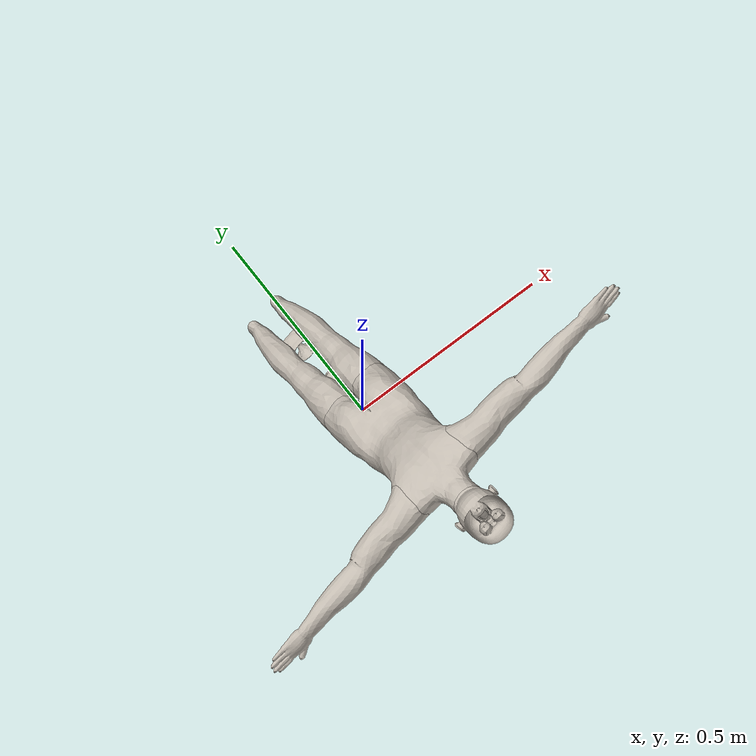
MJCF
<mujoco model="baby_crawl_frame0_static">
  <asset>
  <texture file="visual/ceramic.png" name="tex-baby_crawl_frame0_static" type="2d" />
  <material name="baby_crawl_frame0_static" reflectance="0.5" texrepeat="1 1" texture="tex-baby_crawl_frame0_static" texuniform="false" />
  <mesh file="visual/model_normalized_0.obj" name="model_normalized_0_vis" scale="1.0 1.0 1.0" /><mesh file="visual/model_normalized_1.obj" name="model_normalized_1_vis" scale="1.0 1.0 1.0" /><mesh file="visual/model_normalized_2.obj" name="model_normalized_2_vis" scale="1.0 1.0 1.0" /><mesh file="visual/model_normalized_3.obj" name="model_normalized_3_vis" scale="1.0 1.0 1.0" /><mesh file="visual/model_normalized_4.obj" name="model_normalized_4_vis" scale="1.0 1.0 1.0" /><mesh file="visual/model_normalized_5.obj" name="model_normalized_5_vis" scale="1.0 1.0 1.0" /><mesh file="visual/model_normalized_6.obj" name="model_normalized_6_vis" scale="1.0 1.0 1.0" /><mesh file="visual/model_normalized_7.obj" name="model_normalized_7_vis" scale="1.0 1.0 1.0" /><mesh file="visual/model_normalized_8.obj" name="model_normalized_8_vis" scale="1.0 1.0 1.0" /><mesh file="visual/model_normalized_9.obj" name="model_normalized_9_vis" scale="1.0 1.0 1.0" /><mesh file="visual/model_normalized_10.obj" name="model_normalized_10_vis" scale="1.0 1.0 1.0" /><mesh file="visual/model_normalized_11.obj" name="model_normalized_11_vis" scale="1.0 1.0 1.0" /><mesh file="visual/model_normalized_12.obj" name="model_normalized_12_vis" scale="1.0 1.0 1.0" /><mesh file="visual/model_normalized_13.obj" name="model_normalized_13_vis" scale="1.0 1.0 1.0" /><mesh file="collision/model_normalized_collision_22.obj" name="model_normalized_collision_22._coll" scale="1.0 1.0 1.0" /><mesh file="collision/model_normalized_collision_4.obj" name="model_normalized_collision_4._coll" scale="1.0 1.0 1.0" /><mesh file="collision/model_normalized_collision_27.obj" name="model_normalized_collision_27._coll" scale="1.0 1.0 1.0" /><mesh file="collision/model_normalized_collision_6.obj" name="model_normalized_collision_6._coll" scale="1.0 1.0 1.0" /><mesh file="collision/model_normalized_collision_25.obj" name="model_normalized_collision_25._coll" scale="1.0 1.0 1.0" /><mesh file="collision/model_normalized_collision_26.obj" name="model_normalized_collision_26._coll" scale="1.0 1.0 1.0" /><mesh file="collision/model_normalized_collision_29.obj" name="model_normalized_collision_29._coll" scale="1.0 1.0 1.0" /><mesh file="collision/model_normalized_collision_19.obj" name="model_normalized_collision_19._coll" scale="1.0 1.0 1.0" /><mesh file="collision/model_normalized_collision_12.obj" name="model_normalized_collision_12._coll" scale="1.0 1.0 1.0" /><mesh file="collision/model_normalized_collision_17.obj" name="model_normalized_collision_17._coll" scale="1.0 1.0 1.0" /><mesh file="collision/model_normalized_collision_20.obj" name="model_normalized_collision_20._coll" scale="1.0 1.0 1.0" /><mesh file="collision/model_normalized_collision_14.obj" name="model_normalized_collision_14._coll" scale="1.0 1.0 1.0" /><mesh file="collision/model_normalized_collision_18.obj" name="model_normalized_collision_18._coll" scale="1.0 1.0 1.0" /><mesh file="collision/model_normalized_collision_15.obj" name="model_normalized_collision_15._coll" scale="1.0 1.0 1.0" /><mesh file="collision/model_normalized_collision_30.obj" name="model_normalized_collision_30._coll" scale="1.0 1.0 1.0" /><mesh file="collision/model_normalized_collision_31.obj" name="model_normalized_collision_31._coll" scale="1.0 1.0 1.0" /><mesh file="collision/model_normalized_collision_23.obj" name="model_normalized_collision_23._coll" scale="1.0 1.0 1.0" /><mesh file="collision/model_normalized_collision_28.obj" name="model_normalized_collision_28._coll" scale="1.0 1.0 1.0" /><mesh file="collision/model_normalized_collision_13.obj" name="model_normalized_collision_13._coll" scale="1.0 1.0 1.0" /><mesh file="collision/model_normalized_collision_5.obj" name="model_normalized_collision_5._coll" scale="1.0 1.0 1.0" /><mesh file="collision/model_normalized_collision_24.obj" name="model_normalized_collision_24._coll" scale="1.0 1.0 1.0" /><mesh file="collision/model_normalized_collision_16.obj" name="model_normalized_collision_16._coll" scale="1.0 1.0 1.0" /><mesh file="collision/model_normalized_collision_11.obj" name="model_normalized_collision_11._coll" scale="1.0 1.0 1.0" /><mesh file="collision/model_normalized_collision_1.obj" name="model_normalized_collision_1._coll" scale="1.0 1.0 1.0" /><mesh file="collision/model_normalized_collision_10.obj" name="model_normalized_collision_10._coll" scale="1.0 1.0 1.0" /><mesh file="collision/model_normalized_collision_21.obj" name="model_normalized_collision_21._coll" scale="1.0 1.0 1.0" /><mesh file="collision/model_normalized_collision_8.obj" name="model_normalized_collision_8._coll" scale="1.0 1.0 1.0" /><mesh file="collision/model_normalized_collision_7.obj" name="model_normalized_collision_7._coll" scale="1.0 1.0 1.0" /><mesh file="collision/model_normalized_collision_3.obj" name="model_normalized_collision_3._coll" scale="1.0 1.0 1.0" /><mesh file="collision/model_normalized_collision_2.obj" name="model_normalized_collision_2._coll" scale="1.0 1.0 1.0" /><mesh file="collision/model_normalized_collision_9.obj" name="model_normalized_collision_9._coll" scale="1.0 1.0 1.0" /><mesh file="collision/model_normalized_collision_0.obj" name="model_normalized_collision_0._coll" scale="1.0 1.0 1.0" /><texture type="2d" name="Std_Tongue" file="visual/Std_Tongue.png" /><texture type="2d" name="Std_Eyelash" file="visual/Std_Eyelash.png" /><texture type="2d" name="Std_Nails" file="visual/Std_Nails.png" /><texture type="2d" name="Std_Skin_Leg" file="visual/Std_Skin_Leg.png" /><texture type="2d" name="Std_Skin_Arm" file="visual/Std_Skin_Arm.png" /><texture type="2d" name="Std_Skin_Body" file="visual/Std_Skin_Body.png" /><texture type="2d" name="Std_Skin_Head" file="visual/Std_Skin_Head.png" /><texture type="2d" name="1_Pupil" file="visual/1_Pupil.png" /><texture type="2d" name="1_Cornea" file="visual/1_Cornea.png" /><texture type="2d" name="MetalPins" file="visual/MetalPins.png" /><texture type="2d" name="Diaper" file="visual/Diaper.png" /><texture type="2d" name="PinCaps" file="visual/PinCaps.png" /><texture type="2d" name="2_Teeth" file="visual/2_Teeth.png" /><texture type="2d" name="Beanie" file="visual/Beanie.png" /><material name="Std_Tongue" texture="Std_Tongue" specular="0.4000000000000001" shininess="0.001" /><material name="Std_Eyelash" texture="Std_Eyelash" specular="0.4000000000000001" shininess="0.001" /><material name="Std_Nails" texture="Std_Nails" specular="0.4000000000000001" shininess="0.001" /><material name="Std_Skin_Leg" texture="Std_Skin_Leg" specular="0.4000000000000001" shininess="0.001" /><material name="Std_Skin_Arm" texture="Std_Skin_Arm" specular="0.4000000000000001" shininess="0.001" /><material name="Std_Skin_Body" texture="Std_Skin_Body" specular="0.4000000000000001" shininess="0.001" /><material name="Std_Skin_Head" texture="Std_Skin_Head" specular="0.4000000000000001" shininess="0.001" /><material name="1_Pupil" texture="1_Pupil" specular="0.4000000000000001" shininess="0.001" /><material name="1_Cornea" texture="1_Cornea" specular="0.4000000000000001" shininess="0.001" /><material name="MetalPins" texture="MetalPins" specular="0.4000000000000001" shininess="0.001" /><material name="Diaper" texture="Diaper" specular="0.4000000000000001" shininess="0.001" /><material name="PinCaps" texture="PinCaps" specular="0.4000000000000001" shininess="0.001" /><material name="2_Teeth" texture="2_Teeth" specular="0.4000000000000001" shininess="0.001" /><material name="Beanie" texture="Beanie" specular="0.4000000000000001" shininess="0.001" /></asset>
  <worldbody>
    <body>
      <body name="object">
      <geom solimp="0.998 0.998 0.001" solref="0.001 1" density="100" friction="0.95 0.3 0.1" type="mesh" mesh="model_normalized_0_vis" conaffinity="0" contype="0" group="1" material="Beanie" /><geom solimp="0.998 0.998 0.001" solref="0.001 1" density="100" friction="0.95 0.3 0.1" type="mesh" mesh="model_normalized_1_vis" conaffinity="0" contype="0" group="1" material="2_Teeth" /><geom solimp="0.998 0.998 0.001" solref="0.001 1" density="100" friction="0.95 0.3 0.1" type="mesh" mesh="model_normalized_2_vis" conaffinity="0" contype="0" group="1" material="PinCaps" /><geom solimp="0.998 0.998 0.001" solref="0.001 1" density="100" friction="0.95 0.3 0.1" type="mesh" mesh="model_normalized_3_vis" conaffinity="0" contype="0" group="1" material="Diaper" /><geom solimp="0.998 0.998 0.001" solref="0.001 1" density="100" friction="0.95 0.3 0.1" type="mesh" mesh="model_normalized_4_vis" conaffinity="0" contype="0" group="1" material="MetalPins" /><geom solimp="0.998 0.998 0.001" solref="0.001 1" density="100" friction="0.95 0.3 0.1" type="mesh" mesh="model_normalized_5_vis" conaffinity="0" contype="0" group="1" material="1_Cornea" /><geom solimp="0.998 0.998 0.001" solref="0.001 1" density="100" friction="0.95 0.3 0.1" type="mesh" mesh="model_normalized_6_vis" conaffinity="0" contype="0" group="1" material="1_Pupil" /><geom solimp="0.998 0.998 0.001" solref="0.001 1" density="100" friction="0.95 0.3 0.1" type="mesh" mesh="model_normalized_7_vis" conaffinity="0" contype="0" group="1" material="Std_Skin_Head" /><geom solimp="0.998 0.998 0.001" solref="0.001 1" density="100" friction="0.95 0.3 0.1" type="mesh" mesh="model_normalized_8_vis" conaffinity="0" contype="0" group="1" material="Std_Skin_Body" /><geom solimp="0.998 0.998 0.001" solref="0.001 1" density="100" friction="0.95 0.3 0.1" type="mesh" mesh="model_normalized_9_vis" conaffinity="0" contype="0" group="1" material="Std_Skin_Arm" /><geom solimp="0.998 0.998 0.001" solref="0.001 1" density="100" friction="0.95 0.3 0.1" type="mesh" mesh="model_normalized_10_vis" conaffinity="0" contype="0" group="1" material="Std_Skin_Leg" /><geom solimp="0.998 0.998 0.001" solref="0.001 1" density="100" friction="0.95 0.3 0.1" type="mesh" mesh="model_normalized_11_vis" conaffinity="0" contype="0" group="1" material="Std_Nails" /><geom solimp="0.998 0.998 0.001" solref="0.001 1" density="100" friction="0.95 0.3 0.1" type="mesh" mesh="model_normalized_12_vis" conaffinity="0" contype="0" group="1" material="Std_Eyelash" /><geom solimp="0.998 0.998 0.001" solref="0.001 1" density="100" friction="0.95 0.3 0.1" type="mesh" mesh="model_normalized_13_vis" conaffinity="0" contype="0" group="1" material="Std_Tongue" /><geom solimp="0.998 0.998 0.001" solref="0.001 1" density="100" friction="0.95 0.3 0.1" type="mesh" mesh="model_normalized_collision_22._coll" group="0" rgba="0.8 0.8 0.8 0.0" /><geom solimp="0.998 0.998 0.001" solref="0.001 1" density="100" friction="0.95 0.3 0.1" type="mesh" mesh="model_normalized_collision_4._coll" group="0" rgba="0.8 0.8 0.8 0.0" /><geom solimp="0.998 0.998 0.001" solref="0.001 1" density="100" friction="0.95 0.3 0.1" type="mesh" mesh="model_normalized_collision_27._coll" group="0" rgba="0.8 0.8 0.8 0.0" /><geom solimp="0.998 0.998 0.001" solref="0.001 1" density="100" friction="0.95 0.3 0.1" type="mesh" mesh="model_normalized_collision_6._coll" group="0" rgba="0.8 0.8 0.8 0.0" /><geom solimp="0.998 0.998 0.001" solref="0.001 1" density="100" friction="0.95 0.3 0.1" type="mesh" mesh="model_normalized_collision_25._coll" group="0" rgba="0.8 0.8 0.8 0.0" /><geom solimp="0.998 0.998 0.001" solref="0.001 1" density="100" friction="0.95 0.3 0.1" type="mesh" mesh="model_normalized_collision_26._coll" group="0" rgba="0.8 0.8 0.8 0.0" /><geom solimp="0.998 0.998 0.001" solref="0.001 1" density="100" friction="0.95 0.3 0.1" type="mesh" mesh="model_normalized_collision_29._coll" group="0" rgba="0.8 0.8 0.8 0.0" /><geom solimp="0.998 0.998 0.001" solref="0.001 1" density="100" friction="0.95 0.3 0.1" type="mesh" mesh="model_normalized_collision_19._coll" group="0" rgba="0.8 0.8 0.8 0.0" /><geom solimp="0.998 0.998 0.001" solref="0.001 1" density="100" friction="0.95 0.3 0.1" type="mesh" mesh="model_normalized_collision_12._coll" group="0" rgba="0.8 0.8 0.8 0.0" /><geom solimp="0.998 0.998 0.001" solref="0.001 1" density="100" friction="0.95 0.3 0.1" type="mesh" mesh="model_normalized_collision_17._coll" group="0" rgba="0.8 0.8 0.8 0.0" /><geom solimp="0.998 0.998 0.001" solref="0.001 1" density="100" friction="0.95 0.3 0.1" type="mesh" mesh="model_normalized_collision_20._coll" group="0" rgba="0.8 0.8 0.8 0.0" /><geom solimp="0.998 0.998 0.001" solref="0.001 1" density="100" friction="0.95 0.3 0.1" type="mesh" mesh="model_normalized_collision_14._coll" group="0" rgba="0.8 0.8 0.8 0.0" /><geom solimp="0.998 0.998 0.001" solref="0.001 1" density="100" friction="0.95 0.3 0.1" type="mesh" mesh="model_normalized_collision_18._coll" group="0" rgba="0.8 0.8 0.8 0.0" /><geom solimp="0.998 0.998 0.001" solref="0.001 1" density="100" friction="0.95 0.3 0.1" type="mesh" mesh="model_normalized_collision_15._coll" group="0" rgba="0.8 0.8 0.8 0.0" /><geom solimp="0.998 0.998 0.001" solref="0.001 1" density="100" friction="0.95 0.3 0.1" type="mesh" mesh="model_normalized_collision_30._coll" group="0" rgba="0.8 0.8 0.8 0.0" /><geom solimp="0.998 0.998 0.001" solref="0.001 1" density="100" friction="0.95 0.3 0.1" type="mesh" mesh="model_normalized_collision_31._coll" group="0" rgba="0.8 0.8 0.8 0.0" /><geom solimp="0.998 0.998 0.001" solref="0.001 1" density="100" friction="0.95 0.3 0.1" type="mesh" mesh="model_normalized_collision_23._coll" group="0" rgba="0.8 0.8 0.8 0.0" /><geom solimp="0.998 0.998 0.001" solref="0.001 1" density="100" friction="0.95 0.3 0.1" type="mesh" mesh="model_normalized_collision_28._coll" group="0" rgba="0.8 0.8 0.8 0.0" /><geom solimp="0.998 0.998 0.001" solref="0.001 1" density="100" friction="0.95 0.3 0.1" type="mesh" mesh="model_normalized_collision_13._coll" group="0" rgba="0.8 0.8 0.8 0.0" /><geom solimp="0.998 0.998 0.001" solref="0.001 1" density="100" friction="0.95 0.3 0.1" type="mesh" mesh="model_normalized_collision_5._coll" group="0" rgba="0.8 0.8 0.8 0.0" /><geom solimp="0.998 0.998 0.001" solref="0.001 1" density="100" friction="0.95 0.3 0.1" type="mesh" mesh="model_normalized_collision_24._coll" group="0" rgba="0.8 0.8 0.8 0.0" /><geom solimp="0.998 0.998 0.001" solref="0.001 1" density="100" friction="0.95 0.3 0.1" type="mesh" mesh="model_normalized_collision_16._coll" group="0" rgba="0.8 0.8 0.8 0.0" /><geom solimp="0.998 0.998 0.001" solref="0.001 1" density="100" friction="0.95 0.3 0.1" type="mesh" mesh="model_normalized_collision_11._coll" group="0" rgba="0.8 0.8 0.8 0.0" /><geom solimp="0.998 0.998 0.001" solref="0.001 1" density="100" friction="0.95 0.3 0.1" type="mesh" mesh="model_normalized_collision_1._coll" group="0" rgba="0.8 0.8 0.8 0.0" /><geom solimp="0.998 0.998 0.001" solref="0.001 1" density="100" friction="0.95 0.3 0.1" type="mesh" mesh="model_normalized_collision_10._coll" group="0" rgba="0.8 0.8 0.8 0.0" /><geom solimp="0.998 0.998 0.001" solref="0.001 1" density="100" friction="0.95 0.3 0.1" type="mesh" mesh="model_normalized_collision_21._coll" group="0" rgba="0.8 0.8 0.8 0.0" /><geom solimp="0.998 0.998 0.001" solref="0.001 1" density="100" friction="0.95 0.3 0.1" type="mesh" mesh="model_normalized_collision_8._coll" group="0" rgba="0.8 0.8 0.8 0.0" /><geom solimp="0.998 0.998 0.001" solref="0.001 1" density="100" friction="0.95 0.3 0.1" type="mesh" mesh="model_normalized_collision_7._coll" group="0" rgba="0.8 0.8 0.8 0.0" /><geom solimp="0.998 0.998 0.001" solref="0.001 1" density="100" friction="0.95 0.3 0.1" type="mesh" mesh="model_normalized_collision_3._coll" group="0" rgba="0.8 0.8 0.8 0.0" /><geom solimp="0.998 0.998 0.001" solref="0.001 1" density="100" friction="0.95 0.3 0.1" type="mesh" mesh="model_normalized_collision_2._coll" group="0" rgba="0.8 0.8 0.8 0.0" /><geom solimp="0.998 0.998 0.001" solref="0.001 1" density="100" friction="0.95 0.3 0.1" type="mesh" mesh="model_normalized_collision_9._coll" group="0" rgba="0.8 0.8 0.8 0.0" /><geom solimp="0.998 0.998 0.001" solref="0.001 1" density="100" friction="0.95 0.3 0.1" type="mesh" mesh="model_normalized_collision_0._coll" group="0" rgba="0.8 0.8 0.8 0.0" /></body>
      <site rgba="0 0 0 0" size="0.005" pos="-7.466442056569544e-06 0.000804786252479095 -0.40312058557528985" name="bottom_site" />
      <site rgba="0 0 0 0" size="0.005" pos="-7.466442056569544e-06 0.000804786252479095 0.3998977486298696" name="top_site" />
      <site rgba="0 0 0 0" size="0.005" pos="0.5075607259338284 0.4477678213302088 -0.0016114184727101244" name="horizontal_radius_site" />
    </body>
  </worldbody>
</mujoco>
